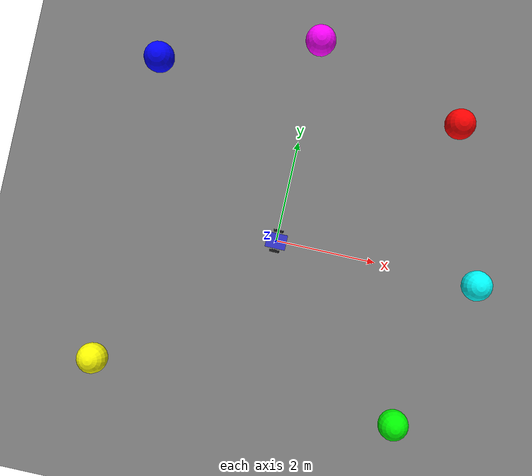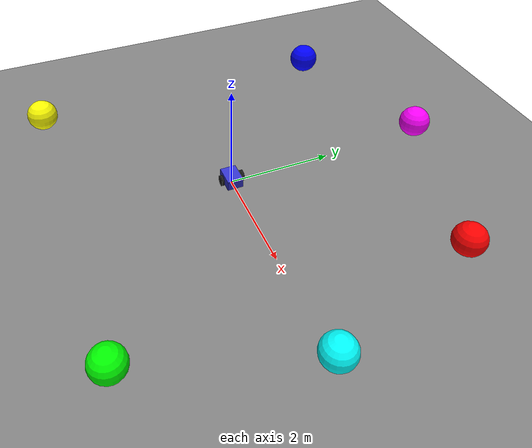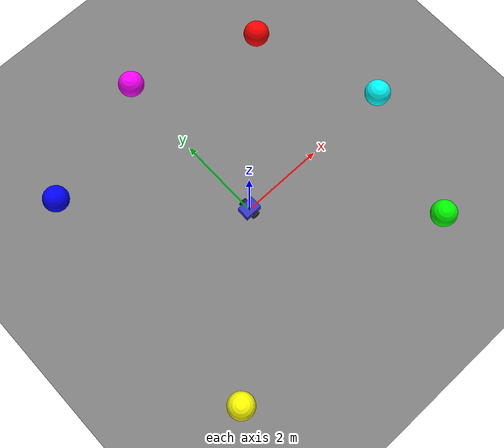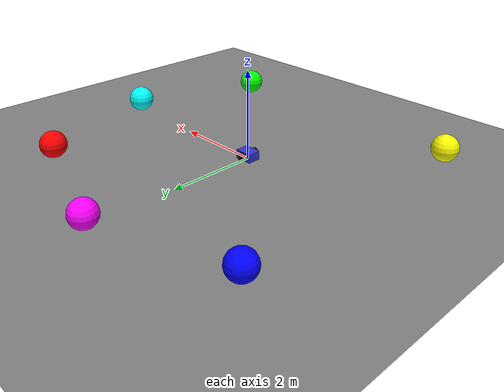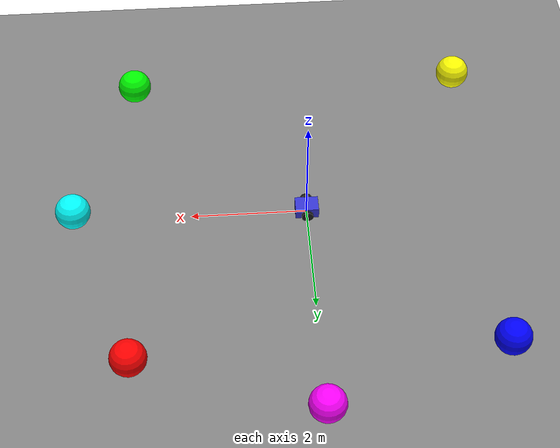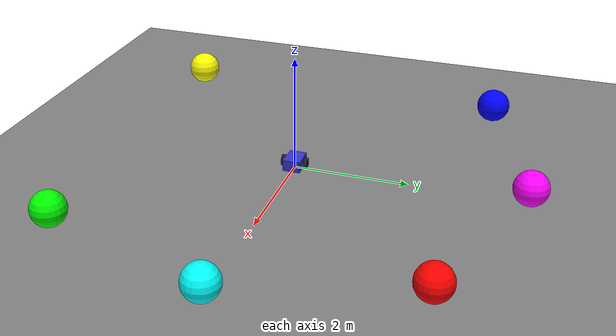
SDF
<?xml version="1.0" ?>
<sdf version="1.9">
  <world name="landmarks_world">
    <physics name="1ms" type="ode">
      <max_step_size>0.01</max_step_size>
      <real_time_factor>1.0</real_time_factor>
    </physics>

    <plugin filename="gz-sim-physics-system" name="gz::sim::systems::Physics"></plugin>
    <plugin filename="gz-sim-user-commands-system" name="gz::sim::systems::UserCommands"></plugin>
    <plugin filename="gz-sim-scene-broadcaster-system" name="gz::sim::systems::SceneBroadcaster"></plugin>

    <light type="directional" name="sun">
      <cast_shadows>true</cast_shadows>
      <pose>0 0 10 0 0 0</pose>
      <diffuse>0.8 0.8 0.8 1</diffuse>
      <direction>-0.5 0.1 -0.9</direction>
    </light>

    <model name="ground_plane">
      <static>true</static>
      <link name="link">
        <collision name="collision">
          <geometry><plane><normal>0 0 1</normal><size>100 100</size></plane></geometry>
        </collision>
        <visual name="visual">
          <geometry><plane><normal>0 0 1</normal><size>100 100</size></plane></geometry>
          <material><ambient>0.5 0.5 0.5 1</ambient><diffuse>0.5 0.5 0.5 1</diffuse></material>
        </visual>
      </link>
    </model>

    <!-- Six landmarks: id, position (x y z), colour. MUST match LANDMARK_CONFIGS
         in ekf_slam/landmark_sensor_node.py -->
    <model name="landmark_0_red">
      <static>true</static>
      <pose>3 3 0.3 0 0 0</pose>
      <link name="link">
        <collision name="collision"><geometry><sphere><radius>0.3</radius></sphere></geometry></collision>
        <visual name="visual">
          <geometry><sphere><radius>0.3</radius></sphere></geometry>
          <material><ambient>1 0 0 1</ambient><diffuse>1 0 0 1</diffuse></material>
        </visual>
      </link>
    </model>
    <model name="landmark_1_green">
      <static>true</static>
      <pose>3 -3 0.3 0 0 0</pose>
      <link name="link">
        <collision name="collision"><geometry><sphere><radius>0.3</radius></sphere></geometry></collision>
        <visual name="visual">
          <geometry><sphere><radius>0.3</radius></sphere></geometry>
          <material><ambient>0 1 0 1</ambient><diffuse>0 1 0 1</diffuse></material>
        </visual>
      </link>
    </model>
    <model name="landmark_2_blue">
      <static>true</static>
      <pose>-3 3 0.3 0 0 0</pose>
      <link name="link">
        <collision name="collision"><geometry><sphere><radius>0.3</radius></sphere></geometry></collision>
        <visual name="visual">
          <geometry><sphere><radius>0.3</radius></sphere></geometry>
          <material><ambient>0 0 1 1</ambient><diffuse>0 0 1 1</diffuse></material>
        </visual>
      </link>
    </model>
    <model name="landmark_3_yellow">
      <static>true</static>
      <pose>-3 -3 0.3 0 0 0</pose>
      <link name="link">
        <collision name="collision"><geometry><sphere><radius>0.3</radius></sphere></geometry></collision>
        <visual name="visual">
          <geometry><sphere><radius>0.3</radius></sphere></geometry>
          <material><ambient>1 1 0 1</ambient><diffuse>1 1 0 1</diffuse></material>
        </visual>
      </link>
    </model>
    <model name="landmark_4_magenta">
      <static>true</static>
      <pose>0 4 0.3 0 0 0</pose>
      <link name="link">
        <collision name="collision"><geometry><sphere><radius>0.3</radius></sphere></geometry></collision>
        <visual name="visual">
          <geometry><sphere><radius>0.3</radius></sphere></geometry>
          <material><ambient>1 0 1 1</ambient><diffuse>1 0 1 1</diffuse></material>
        </visual>
      </link>
    </model>
    <model name="landmark_5_cyan">
      <static>true</static>
      <pose>4 0 0.3 0 0 0</pose>
      <link name="link">
        <collision name="collision"><geometry><sphere><radius>0.3</radius></sphere></geometry></collision>
        <visual name="visual">
          <geometry><sphere><radius>0.3</radius></sphere></geometry>
          <material><ambient>0 1 1 1</ambient><diffuse>0 1 1 1</diffuse></material>
        </visual>
      </link>
    </model>

    <!-- Simple differential-drive robot -->
    <model name="ekf_robot">
      <pose>0 0 0.1 0 0 0</pose>
      <link name="chassis">
        <inertial>
          <mass>5.0</mass>
          <inertia><ixx>0.0542</ixx><iyy>0.0833</iyy><izz>0.1042</izz>
                    <ixy>0</ixy><ixz>0</ixz><iyz>0</iyz></inertia>
        </inertial>
        <collision name="collision">
          <geometry><box><size>0.4 0.3 0.2</size></box></geometry>
        </collision>
        <visual name="visual">
          <geometry><box><size>0.4 0.3 0.2</size></box></geometry>
          <material><ambient>0.2 0.2 0.8 1</ambient><diffuse>0.2 0.2 0.8 1</diffuse></material>
        </visual>
      </link>

      <link name="left_wheel">
        <pose>0 0.2 0 -1.5707963 0 0</pose>
        <inertial>
          <mass>0.5</mass>
          <inertia><ixx>0.00135</ixx><iyy>0.00135</iyy><izz>0.0025</izz>
                    <ixy>0</ixy><ixz>0</ixz><iyz>0</iyz></inertia>
        </inertial>
        <collision name="collision">
          <geometry><cylinder><radius>0.1</radius><length>0.05</length></cylinder></geometry>
          <surface><friction><ode><mu>1.0</mu><mu2>1.0</mu2></ode></friction></surface>
        </collision>
        <visual name="visual">
          <geometry><cylinder><radius>0.1</radius><length>0.05</length></cylinder></geometry>
          <material><ambient>0.1 0.1 0.1 1</ambient></material>
        </visual>
      </link>

      <link name="right_wheel">
        <pose>0 -0.2 0 -1.5707963 0 0</pose>
        <inertial>
          <mass>0.5</mass>
          <inertia><ixx>0.00135</ixx><iyy>0.00135</iyy><izz>0.0025</izz>
                    <ixy>0</ixy><ixz>0</ixz><iyz>0</iyz></inertia>
        </inertial>
        <collision name="collision">
          <geometry><cylinder><radius>0.1</radius><length>0.05</length></cylinder></geometry>
          <surface><friction><ode><mu>1.0</mu><mu2>1.0</mu2></ode></friction></surface>
        </collision>
        <visual name="visual">
          <geometry><cylinder><radius>0.1</radius><length>0.05</length></cylinder></geometry>
          <material><ambient>0.1 0.1 0.1 1</ambient></material>
        </visual>
      </link>

      <link name="caster">
        <pose>-0.15 0 -0.05 0 0 0</pose>
        <inertial><mass>0.1</mass>
          <inertia><ixx>0.0001</ixx><iyy>0.0001</iyy><izz>0.0001</izz>
                    <ixy>0</ixy><ixz>0</ixz><iyz>0</iyz></inertia>
        </inertial>
        <collision name="collision">
          <geometry><sphere><radius>0.05</radius></sphere></geometry>
          <surface><friction><ode><mu>0.01</mu><mu2>0.01</mu2></ode></friction></surface>
        </collision>
        <visual name="visual">
          <geometry><sphere><radius>0.05</radius></sphere></geometry>
        </visual>
      </link>

      <joint name="left_wheel_joint" type="revolute">
        <parent>chassis</parent><child>left_wheel</child>
        <axis>
          <xyz>0 0 1</xyz>
          <limit>
            <lower>-1e9</lower>
            <upper>1e9</upper>
            <effort>1e6</effort>
          </limit>
        </axis>
      </joint>
      <joint name="right_wheel_joint" type="revolute">
        <parent>chassis</parent><child>right_wheel</child>
        <axis>
          <xyz>0 0 1</xyz>
          <limit>
            <lower>-1e9</lower>
            <upper>1e9</upper>
            <effort>1e6</effort>
          </limit>
        </axis>
      </joint>
      <joint name="caster_joint" type="fixed">
        <parent>chassis</parent><child>caster</child>
      </joint>

      <plugin filename="gz-sim-diff-drive-system" name="gz::sim::systems::DiffDrive">
        <left_joint>left_wheel_joint</left_joint>
        <right_joint>right_wheel_joint</right_joint>
        <wheel_separation>0.4</wheel_separation>
        <wheel_radius>0.1</wheel_radius>
        <odom_publish_frequency>10</odom_publish_frequency>
        <topic>cmd_vel</topic>
        <odom_topic>odom</odom_topic>
        <frame_id>world</frame_id>
        <child_frame_id>base_link_gt</child_frame_id>
      </plugin>
    </model>
  </world>
</sdf>
